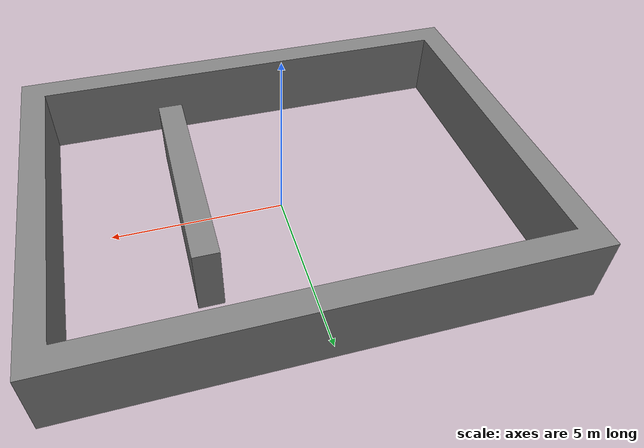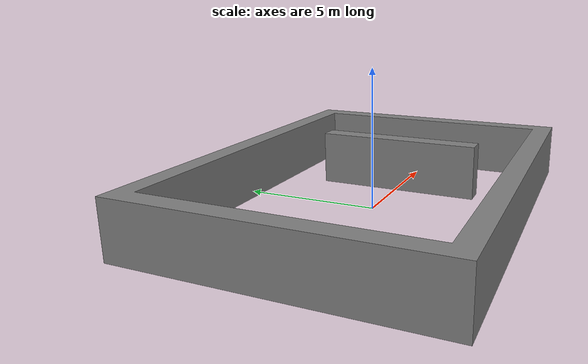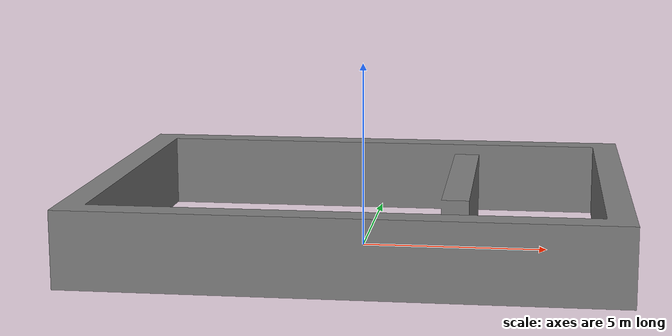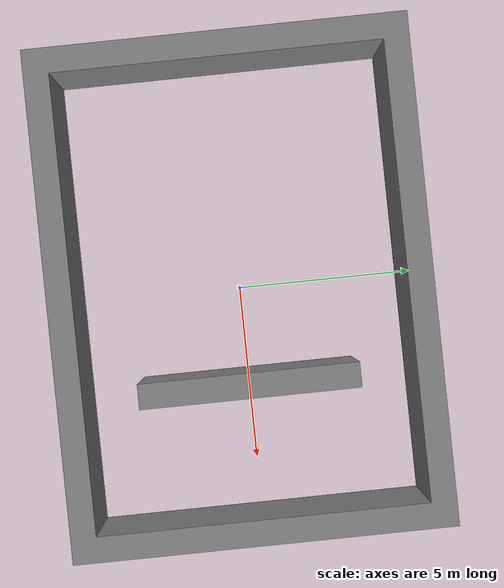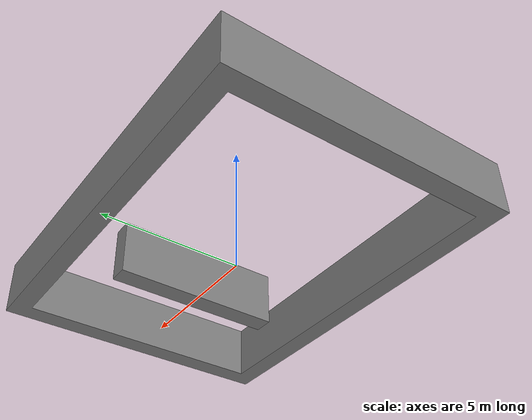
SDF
<?xml version="1.0" ?>
<sdf version="1.5">
      <model name="smallworld-test-2">
		<static>true</static>
    	<link name="link">
        	<pose>0 0 0 0 0 0</pose>

        	<collision name="collision">
          		<geometry>
		      		<mesh>
		      			<uri>model://smallworld-test-2/meshes/floor_plan.stl</uri>
		      		</mesh>
          		</geometry>
    		</collision>

			<visual name="visual">
          		<material>

				  <lighting>true</lighting>

				  <ambient>0.4 0.4 0.4 1.0</ambient>
				  <diffuse>0.5 0.5 0.5 1.0</diffuse>
				  <specular>0.5 0.5 0.5 1.0</specular>
				  <emissive>0.0 0.0 0.0 1.0</emissive>

          		</material>

          		<geometry>

          			<mesh>
		      			<uri>model://smallworld-test-2/meshes/floor_plan.stl</uri>
          			</mesh>
          		</geometry>
				<cast_shadows>true</cast_shadows>
				<laser_retro>true</laser_retro>

         	</visual>
        </link>
    </model>
</sdf>
